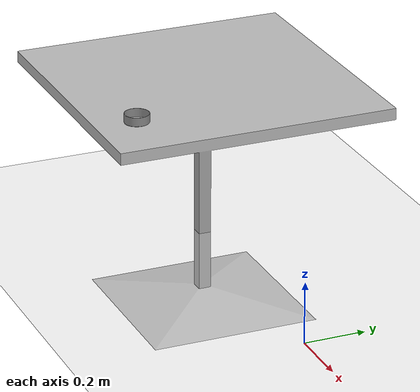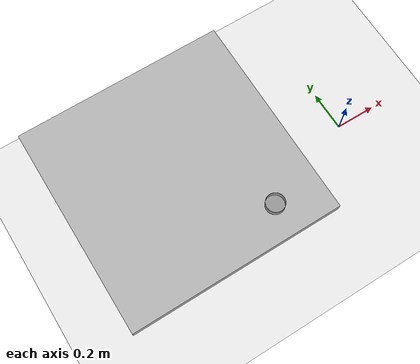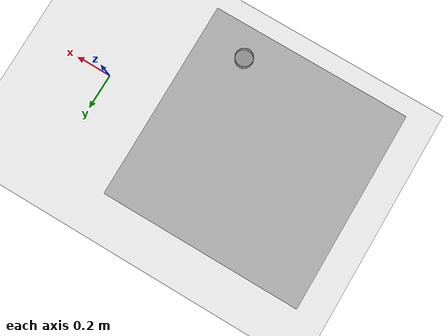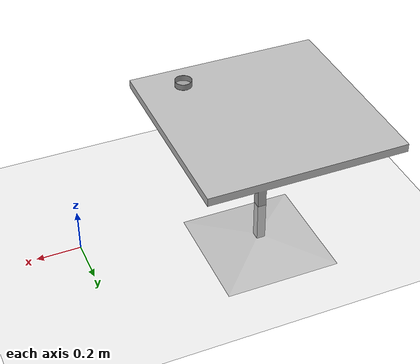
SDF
<sdf version="1.6">
 <world name="default">
  <light name="sun" type="directional">
   <pose>0 0 10 0 -0 0</pose>
   <diffuse>0.8 0.8 0.8 1</diffuse>
   <specular>0.2 0.2 0.2 1</specular>
   <attenuation>
    <range>1000</range>
    <constant>0.9</constant>
    <linear>0.01</linear>
    <quadratic>0.001</quadratic>
   </attenuation>
   <direction>-0.5 0.1 -0.9</direction>
  </light>
  <model name="ground_plane">
   <static>1</static>
   <link name="link">
    <collision name="collision">
     <geometry><plane><normal>0 0 1</normal><size>100 100</size></plane></geometry>
     <surface>
      <contact><collide_bitmask>65535</collide_bitmask></contact>
      <friction><ode><mu>100</mu><mu2>50</mu2></ode></friction>
     </surface>
    </collision>
    <visual name="visual">
     <cast_shadows>0</cast_shadows>
     <geometry><plane><normal>0 0 1</normal><size>100 100</size></plane></geometry>
     <material>
      <script><uri>file://media/materials/scripts/gazebo.material</uri><name>Gazebo/Grey</name></script>
     </material>
    </visual>
   </link>
  </model>
  <gravity>0 0 -9.8</gravity>
  <magnetic_field>6e-06 2.3e-05 -4.2e-05</magnetic_field>
  <atmosphere type="adiabatic"/>
  <physics name="default_physics" default="0" type="ode">
   <max_step_size>0.001</max_step_size>
   <real_time_factor>1</real_time_factor>
   <real_time_update_rate>1000</real_time_update_rate>
  </physics>
  <scene><ambient>0.4 0.4 0.4 1</ambient><background>0.7 0.7 0.7 1</background><shadows>1</shadows></scene>
  <spherical_coordinates>
   <surface_model>EARTH_WGS84</surface_model>
   <latitude_deg>0</latitude_deg>
   <longitude_deg>0</longitude_deg>
   <elevation>0</elevation>
   <heading_deg>0</heading_deg>
  </spherical_coordinates>
  <model name="cafe_table">
   <static>1</static>
   <link name="link">
    <collision name="surface">
     <pose>0 0 0.755 0 -0 0</pose>
     <geometry><box><size>0.913 0.913 0.04</size></box></geometry>
    </collision>
    <collision name="column">
     <pose>0 0 0.37 0 -0 0</pose>
     <geometry><box><size>0.042 0.042 0.74</size></box></geometry>
    </collision>
    <collision name="base">
     <pose>0 0 0.02 0 -0 0</pose>
     <geometry><box><size>0.56 0.56 0.04</size></box></geometry>
    </collision>
    <visual name="visual">
     <geometry><mesh><uri>model://cafe_table/meshes/cafe_table.dae</uri></mesh></geometry>
    </visual>
   </link>
   <pose>-0.864786 0.034909 -0.249131 0 -0 0</pose>
  </model>
  <model name="round_tin_base">
   <link name="link">
    <inertial>
     <pose>0 0 0.014085 0 -0 0</pose>
     <mass>0.0223</mass>
     <inertia>
      <ixx>1.93147e-05</ixx>
      <ixy>0</ixy>
      <ixz>0</ixz>
      <iyy>1.93147e-05</iyy>
      <iyz>0</iyz>
      <izz>3.568e-05</izz>
     </inertia>
    </inertial>
    <collision name="collision_cylinder">
     <pose>0 0 0.001 0 -0 0</pose>
     <geometry><cylinder><radius>0.04</radius><length>0.002</length></cylinder></geometry>
     <surface>
      <contact>
       <poissons_ratio>0.36</poissons_ratio>
       <elastic_modulus>5e+10</elastic_modulus>
       <ode><kp>100000</kp><kd>100</kd><max_vel>100</max_vel><min_depth>0.001</min_depth></ode>
      </contact>
      <friction>
       <torsional>
        <coefficient>1</coefficient>
        <use_patch_radius>0</use_patch_radius>
        <surface_radius>0.01</surface_radius>
       </torsional>
      </friction>
     </surface>
    </collision>
    <visual name="visual_cylinder">
     <pose>0 0 0.001 0 -0 0</pose>
     <geometry><cylinder><radius>0.04</radius><length>0.002</length></cylinder></geometry>
     <material>
      <script><uri>file://media/materials/scripts/gazebo.material</uri><name>Gazebo/Grey</name></script>
     </material>
    </visual>
    <collision name="collision_mesh">
     <pose>0 0 0.001 0 -0 0</pose>
     <geometry><mesh><uri>model://round_tin_base/meshes/round_tin_base.dae</uri></mesh></geometry>
     <surface><contact><ode><max_vel>0.1</max_vel><min_depth>0.0001</min_depth></ode></contact></surface>
    </collision>
    <visual name="visual_mesh">
     <pose>0 0 0.001 0 -0 0</pose>
     <geometry><mesh><uri>model://round_tin_base/meshes/round_tin_base.dae</uri></mesh></geometry>
     <material>
      <script><uri>file://media/materials/scripts/gazebo.material</uri><name>Gazebo/Grey</name></script>
     </material>
    </visual>
   </link>
   <pose>-0.617216 -0.286839 0.525828 -0.001321 0.000686 0</pose>
  </model>
 </world>
</sdf>
